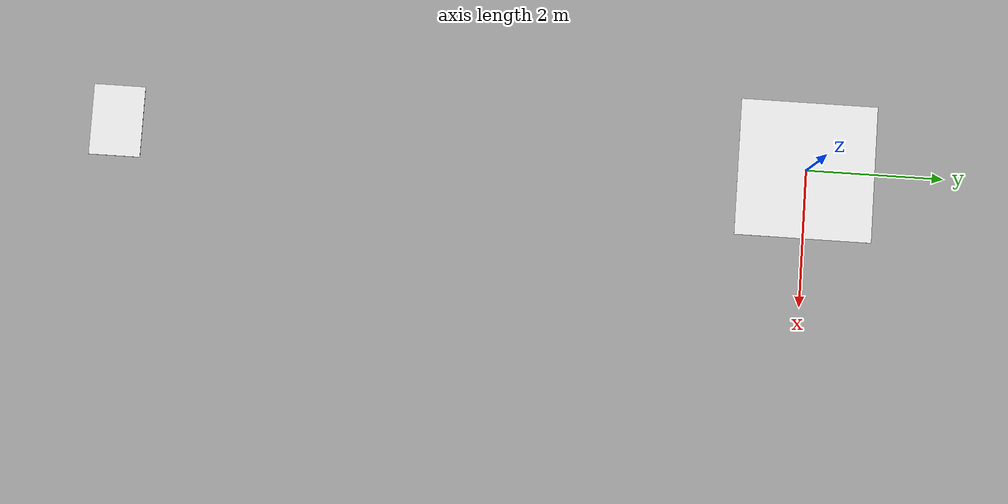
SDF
<sdf version="1.7">
 <world name="world_demo">
  <gravity>0 0 -9.8</gravity>
  <physics type="ode"><max_step_size>0.01</max_step_size><real_time_factor>1</real_time_factor></physics>
  <plugin name="gz::sim::systems::Physics" filename="libgz-sim-physics-system.so"/>
  <plugin name="gz::sim::systems::UserCommands" filename="libgz-sim-user-commands-system.so"/>
  <plugin name="gz::sim::systems::SceneBroadcaster" filename="libgz-sim-scene-broadcaster-system.so"/>
  <plugin name="gz::sim::systems::Imu" filename="libgz-sim-imu-system.so"/>
  <plugin name="gz::sim::systems::Sensors" filename="libgz-sim-sensors-system.so">
   <render_engine>ogre2</render_engine>
  </plugin>
  <plugin name="gz::sim::systems::NavSat" filename="libgz-sim-navsat-system.so"/>
  <scene>
   <ambient>1 1 1 1</ambient>
   <background>0.3 0.7 0.9 1</background>
   <shadows>0</shadows>
   <grid>false</grid>
  </scene>
  <light type="directional" name="sun">
   <cast_shadows>0</cast_shadows>
   <pose>-5 -3 10 0 0 0</pose>
   <diffuse>1 1 1 1</diffuse>
   <specular>1 1 1 1</specular>
   <direction>0 0 -1</direction>
  </light>
  <model name="ground_plane">
   <static>true</static>
   <link name="link">
    <collision name="collision">
     <geometry><plane><normal>0.0 0.0 1</normal><size>1 1</size></plane></geometry>
    </collision>
   </link>
  </model>
  <include>
   <uri>model://CharucoBoard</uri>
   <name>charuco_calibration_board</name>
   <pose>0 -10 0.505 0 0 0</pose>
  </include>
  <include><uri>model://ArUco999</uri><name>aruco_marker_999</name><pose>0 0 0.001 0 0 0</pose></include>
 </world>
</sdf>

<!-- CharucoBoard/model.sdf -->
<sdf version="1.8">
  <model name="charuco_calibration_board">
    <static>false</static>
    <link name="link">
      <pose>0 0 0 0 0 0</pose>
      <gravity>false</gravity>
      <inertial>
        <mass>0.1</mass>
        <inertia>
          <ixx>0.004</ixx>
          <iyy>0.008</iyy>
          <izz>0.012</izz>
        </inertia>
      </inertial>

      <!-- Visual (frente do marcador) -->
      <visual name="front_visual">
        <pose>0 0 0.005 0 0 0</pose>
        <geometry>
          <box>
            <size>1.02 0.74 0.001</size>
          </box>
        </geometry>
        <material>
          <ambient>1 1 1 1</ambient>
          <diffuse>1 1 1 1</diffuse>
          <specular>0.1 0.1 0.1 1</specular>
          <pbr>
            <metal>
              <albedo_map>model://CharucoBoard/materials/textures/charuco_board_7x9_4x4_50_with_border.png</albedo_map>
            </metal>
          </pbr>
        </material>
      </visual>

      <!-- Visual (verso - branco) -->
      <visual name="back_visual">
        <pose>0 0 -0.005 0 0 0</pose>
        <geometry>
          <box>
            <size>1.02 0.74 0.001</size>
          </box>
        </geometry>
        <material>
          <ambient>0.9 0.9 0.9 1</ambient>
          <diffuse>0.9 0.9 0.9 1</diffuse>
        </material>
      </visual>

      <!-- Visual (lateral - espessura) -->
      <visual name="edge_visual">
        <pose>0 0 0 0 0 0</pose>
        <geometry>
          <box>
            <size>1.02 0.74 0.01</size>
          </box>
        </geometry>
        <material>
          <ambient>0.3 0.3 0.3 1</ambient>
          <diffuse>0.3 0.3 0.3 1</diffuse>
        </material>
      </visual>

      <!-- Collision -->
      <collision name="collision">
        <pose>0 0 0 0 0 0</pose>
        <geometry>
          <box>
            <size>1.02 0.74 0.01</size>
          </box>
        </geometry>
        <surface>
          <friction>
            <ode>
              <mu>0.6</mu>
              <mu2>0.6</mu2>
            </ode>
          </friction>
        </surface>
      </collision>

    </link>

    <!-- Plugin para permitir movimento via gz service -->
    <plugin
      filename="gz-sim-pose-publisher-system"
      name="gz::sim::systems::PosePublisher">
      <publish_link_pose>true</publish_link_pose>
      <publish_sensor_pose>false</publish_sensor_pose>
      <publish_collision_pose>false</publish_collision_pose>
      <publish_visual_pose>false</publish_visual_pose>
      <publish_nested_model_pose>false</publish_nested_model_pose>
      <use_pose_vector_msg>true</use_pose_vector_msg>
      <static_publisher>false</static_publisher>
      <static_update_frequency>1</static_update_frequency>
    </plugin>

  </model>
</sdf>

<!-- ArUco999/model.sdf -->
<sdf version="1.8">
  <model name="aruco_marker_999">
    <static>true</static>
    <link name="link">
      <pose>0 0 0 0 0 0</pose>
      <inertial>
        <mass>0.01</mass>
        <inertia>
          <ixx>0.001</ixx>
          <iyy>0.001</iyy>
          <izz>0.002</izz>
        </inertia>
      </inertial>

      <!-- Visual (frente do marcador) -->
      <visual name="front_visual">
        <pose>0 0 0.001 0 0 0</pose>
        <geometry>
          <box>
            <size>2.0 2.0 0.001</size>
          </box>
        </geometry>
        <material>
          <ambient>1 1 1 1</ambient>
          <diffuse>1 1 1 1</diffuse>
          <specular>0.1 0.1 0.1 1</specular>
          <pbr>
            <metal>
              <albedo_map>model://ArUco999/materials/textures/aruco_marker_999.png</albedo_map>
            </metal>
          </pbr>
        </material>
      </visual>

      <!-- Visual (verso - branco) -->
      <visual name="back_visual">
        <pose>0 0 -0.001 0 0 0</pose>
        <geometry>
          <box>
            <size>2.0 2.0 0.001</size>
          </box>
        </geometry>
        <material>
          <ambient>0.9 0.9 0.9 1</ambient>
          <diffuse>0.9 0.9 0.9 1</diffuse>
        </material>
      </visual>

      <!-- Visual (lateral - espessura) -->
      <visual name="edge_visual">
        <pose>0 0 0 0 0 0</pose>
        <geometry>
          <box>
            <size>2.0 2.0 0.002</size>
          </box>
        </geometry>
        <material>
          <ambient>0.3 0.3 0.3 1</ambient>
          <diffuse>0.3 0.3 0.3 1</diffuse>
        </material>
      </visual>

      <!-- Collision -->
      <collision name="collision">
        <pose>0 0 0 0 0 0</pose>
        <geometry>
          <box>
            <size>2.0 2.0 0.002</size>
          </box>
        </geometry>
        <surface>
          <friction>
            <ode>
              <mu>0.6</mu>
              <mu2>0.6</mu2>
            </ode>
          </friction>
        </surface>
      </collision>

    </link>
  </model>
</sdf>
